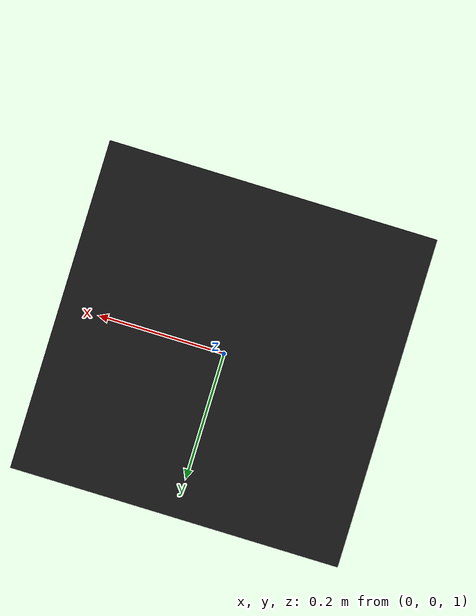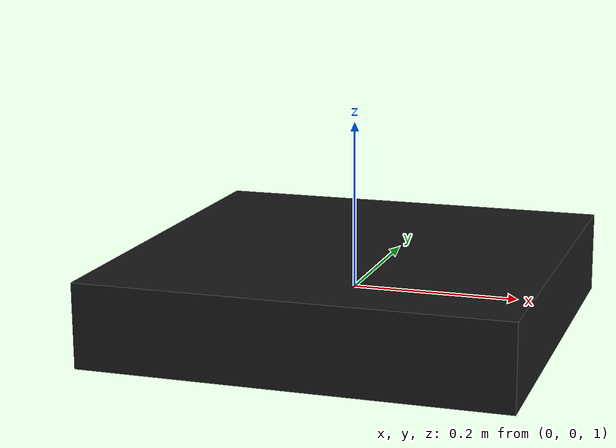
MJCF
<mujoco model="campus_surveillance_quadrotor">
  <compiler angle="radian" coordinate="local"/>
  <option gravity="0 0 -9.81" timestep="0.002"/>
  <worldbody>
    <geom name="ground" type="plane" size="50 50 0.1" rgba="0.2 0.5 0.2 1"/>
    <light directional="true" pos="0 0 20" dir="0 0 -1"/>
    <body name="quadrotor" pos="0 0 1.0">
      <freejoint name="quad_joint"/>
      <geom name="frame" type="box" size="0.25 0.25 0.05" rgba="0.1 0.1 0.1 1" mass="1.8"/>
      <site name="camera_gimbal" pos="0.2 0 -0.05" size="0.02" rgba="0 1 1 1"/>
    </body>
  </worldbody>
</mujoco>
